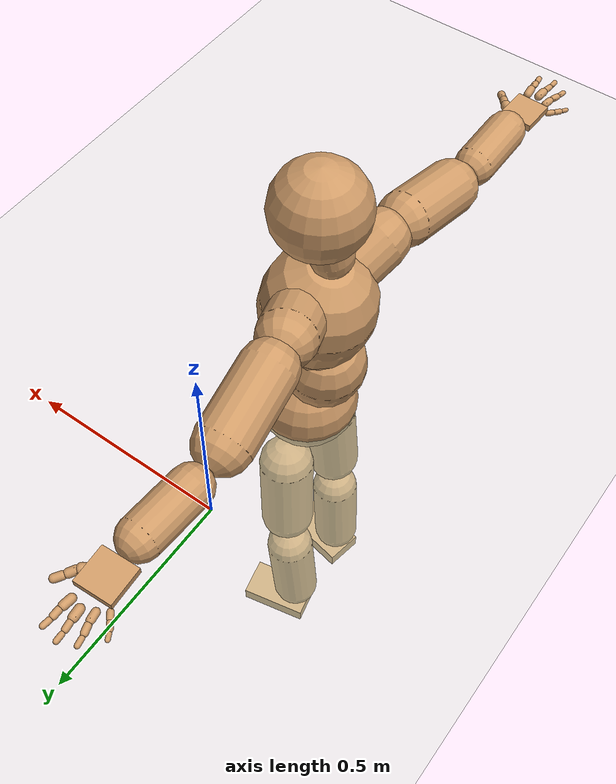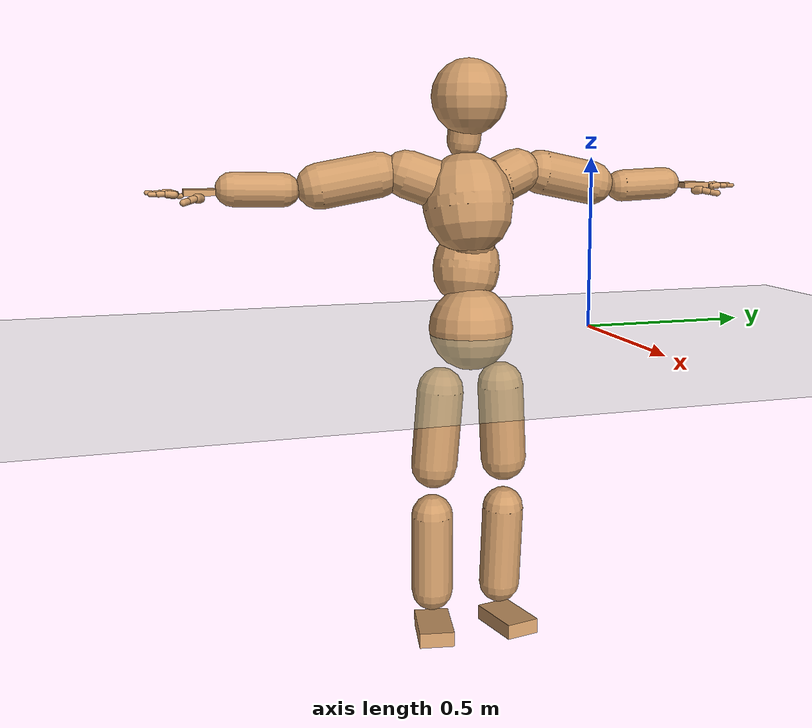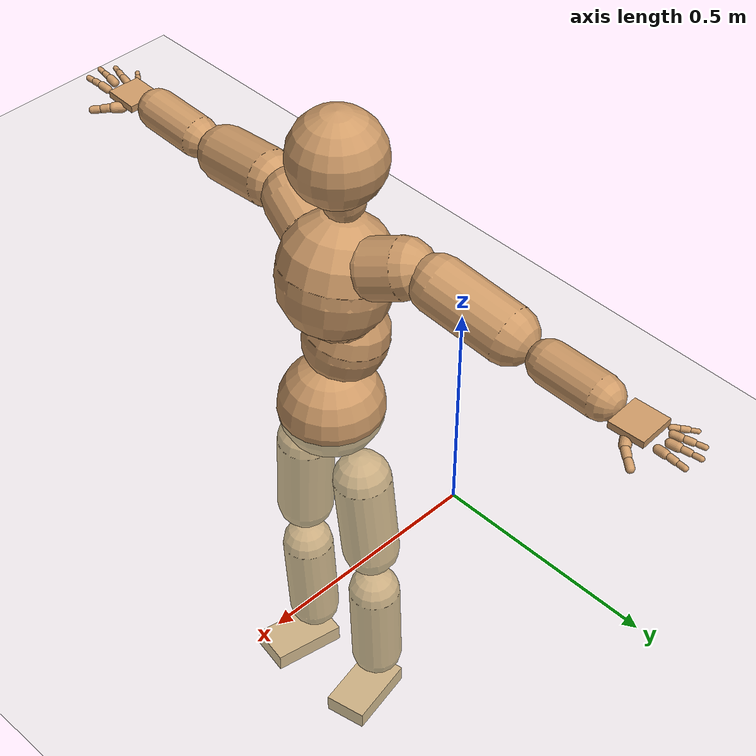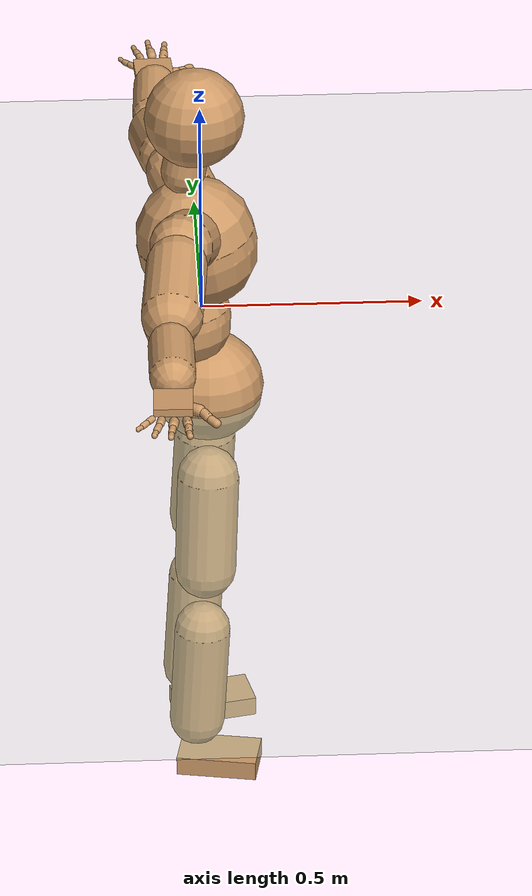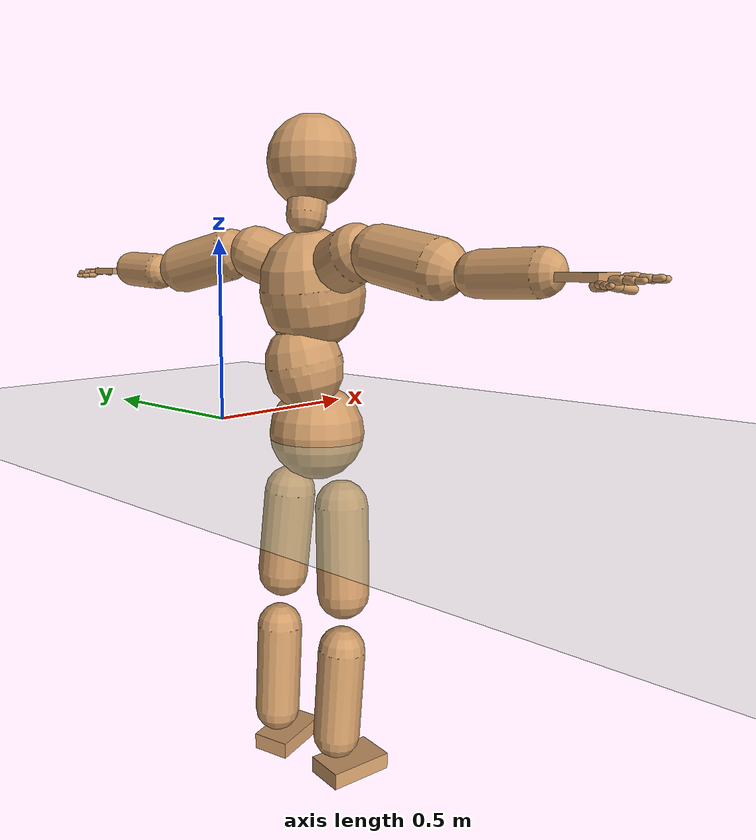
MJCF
<mujoco model="humanoid">
  <compiler coordinate="local" angle="radian"/>
  <default>
    <joint damping="0.0" armature="0.01" stiffness="0.0" limited="true"/>
    <geom conaffinity="1" condim="3" contype="7" margin="0.001" rgba="0.8 0.6 .4 1"/>
  </default>
  <asset>
    <texture type="skybox" builtin="gradient" rgb1=".4 .5 .6" rgb2="0 0 0" width="100" height="100"/>
    <texture builtin="flat" height="1278" mark="cross" markrgb="1 1 1" name="texgeom" random="0.01" rgb1="0.8 0.6 0.4" rgb2="0.8 0.6 0.4" type="cube" width="127"/>
    <texture builtin="checker" height="100" name="texplane" rgb1="0 0 0" rgb2="0.8 0.8 0.8" type="2d" width="100"/>
    <material name="MatPlane" reflectance="0.5" shininess="1" specular="1" texrepeat="60 60" texture="texplane"/>
    <material name="geom" texture="texgeom" texuniform="true"/>
  </asset>
  <worldbody>
    <light cutoff="100" diffuse="1 1 1" dir="-0 0 -1.3" directional="true" exponent="1" pos="0 0 1.3" specular=".1 .1 .1"/>
    <geom conaffinity="1" condim="3" name="floor" pos="0 0 0" rgba="0.8 0.9 0.8 1" size="100 100 .2" type="plane" material="MatPlane"/>
    <body name="Pelvis" pos="0.0008 -0.372 0.0146">
      <freejoint name="Pelvis"/>
      <geom type="sphere" contype="1" conaffinity="1" density="500" size="0.1225" pos="0.0000 0.0000 0.0000" name="Pelvis"/>
      <body name="L_Hip" pos="-0.0001 0.0876 -0.0977">
        <joint name="L_Hip_x" type="hinge" pos="0 0 0" axis="1 0 0" stiffness="800" damping="80" armature="0.02" range="-180.0000 180.0000"/>
        <joint name="L_Hip_y" type="hinge" pos="0 0 0" axis="0 1 0" stiffness="800" damping="80" armature="0.02" range="-180.0000 180.0000"/>
        <joint name="L_Hip_z" type="hinge" pos="0 0 0" axis="0 0 1" stiffness="800" damping="80" armature="0.02" range="-180.0000 180.0000"/>
        <geom type="capsule" contype="1" conaffinity="1" density="500" fromto="-0.0044 0.0049 -0.0767 -0.0176 0.0198 -0.3066" size="0.0678" name="L_Hip"/>
        <body name="L_Knee" pos="-0.022 0.0247 -0.3833">
          <joint name="L_Knee_x" type="hinge" pos="0 0 0" axis="1 0 0" stiffness="800" damping="80" armature="0.02" range="-180.0000 180.0000"/>
          <joint name="L_Knee_y" type="hinge" pos="0 0 0" axis="0 1 0" stiffness="800" damping="80" armature="0.02" range="-180.0000 180.0000"/>
          <joint name="L_Knee_z" type="hinge" pos="0 0 0" axis="0 0 1" stiffness="800" damping="80" armature="0.02" range="-180.0000 180.0000"/>
          <geom type="capsule" contype="1" conaffinity="1" density="500" fromto="-0.0053 -0.0019 -0.0818 -0.0212 -0.0075 -0.3272" size="0.0618" name="L_Knee"/>
          <body name="L_Ankle" pos="-0.0265 -0.0094 -0.409">
            <joint name="L_Ankle_x" type="hinge" pos="0 0 0" axis="1 0 0" stiffness="800" damping="80" armature="0.02" range="-180.0000 180.0000"/>
            <joint name="L_Ankle_y" type="hinge" pos="0 0 0" axis="0 1 0" stiffness="800" damping="80" armature="0.02" range="-180.0000 180.0000"/>
            <joint name="L_Ankle_z" type="hinge" pos="0 0 0" axis="0 0 1" stiffness="800" damping="80" armature="0.02" range="-180.0000 180.0000"/>
            <geom type="box" contype="1" conaffinity="1" density="500" pos="0.0560 0.0119 -0.0227" size="0.0899 0.0513 0.0222" quat="0.9945 0.0000 0.0000 0.1047" name="L_Ankle"/>
            <body name="L_Toe" pos="0.112 0.0238 -0.0455">
              <joint name="L_Toe_x" type="hinge" pos="0 0 0" axis="1 0 0" stiffness="500" damping="50" armature="0.02" range="-180.0000 180.0000"/>
              <joint name="L_Toe_y" type="hinge" pos="0 0 0" axis="0 1 0" stiffness="500" damping="50" armature="0.02" range="-180.0000 180.0000"/>
              <joint name="L_Toe_z" type="hinge" pos="0 0 0" axis="0 0 1" stiffness="500" damping="50" armature="0.02" range="-180.0000 180.0000"/>
              <geom type="box" contype="1" conaffinity="1" density="500" pos="0.0000 0.0000 0.0227" size="0.001 0.0025 0.0011" quat="0.9938 0.0000 0.0000 0.1112" name="L_Toe"/>
            </body>
          </body>
        </body>
      </body>
      <body name="R_Hip" pos="-0.0011 -0.0868 -0.1036">
        <joint name="R_Hip_x" type="hinge" pos="0 0 0" axis="1 0 0" stiffness="800" damping="80" armature="0.02" range="-180.0000 180.0000"/>
        <joint name="R_Hip_y" type="hinge" pos="0 0 0" axis="0 1 0" stiffness="800" damping="80" armature="0.02" range="-180.0000 180.0000"/>
        <joint name="R_Hip_z" type="hinge" pos="0 0 0" axis="0 0 1" stiffness="800" damping="80" armature="0.02" range="-180.0000 180.0000"/>
        <geom type="capsule" contype="1" conaffinity="1" density="500" fromto="-0.0031 -0.0059 -0.0760 -0.0122 -0.0235 -0.3040" size="0.0677" name="R_Hip"/>
        <body name="R_Knee" pos="-0.0153 -0.0294 -0.38">
          <joint name="R_Knee_x" type="hinge" pos="0 0 0" axis="1 0 0" stiffness="800" damping="80" armature="0.02" range="-180.0000 180.0000"/>
          <joint name="R_Knee_y" type="hinge" pos="0 0 0" axis="0 1 0" stiffness="800" damping="80" armature="0.02" range="-180.0000 180.0000"/>
          <joint name="R_Knee_z" type="hinge" pos="0 0 0" axis="0 0 1" stiffness="800" damping="80" armature="0.02" range="-180.0000 180.0000"/>
          <geom type="capsule" contype="1" conaffinity="1" density="500" fromto="-0.0047 0.0008 -0.0799 -0.0188 0.0030 -0.3198" size="0.0618" name="R_Knee"/>
          <body name="R_Ankle" pos="-0.0234 0.0038 -0.3997">
            <joint name="R_Ankle_x" type="hinge" pos="0 0 0" axis="1 0 0" stiffness="800" damping="80" armature="0.02" range="-180.0000 180.0000"/>
            <joint name="R_Ankle_y" type="hinge" pos="0 0 0" axis="0 1 0" stiffness="800" damping="80" armature="0.02" range="-180.0000 180.0000"/>
            <joint name="R_Ankle_z" type="hinge" pos="0 0 0" axis="0 0 1" stiffness="800" damping="80" armature="0.02" range="-180.0000 180.0000"/>
            <geom type="box" contype="1" conaffinity="1" density="500" pos="0.0530 -0.0096 -0.0243" size="0.0899 0.0513 0.0222" quat="0.9960 0.0000 0.0000 -0.0892" name="R_Ankle"/>
            <body name="R_Toe" pos="0.106 -0.0191 -0.0485">
              <joint name="R_Toe_x" type="hinge" pos="0 0 0" axis="1 0 0" stiffness="500" damping="50" armature="0.02" range="-180.0000 180.0000"/>
              <joint name="R_Toe_y" type="hinge" pos="0 0 0" axis="0 1 0" stiffness="500" damping="50" armature="0.02" range="-180.0000 180.0000"/>
              <joint name="R_Toe_z" type="hinge" pos="0 0 0" axis="0 0 1" stiffness="500" damping="50" armature="0.02" range="-180.0000 180.0000"/>
              <geom type="box" contype="1" conaffinity="1" density="500" pos="0.0000 0.0000 0.0243" size="0.001 0.0025 0.0011" quat="0.9969 0.0000 0.0000 -0.0786" name="R_Toe"/>
            </body>
          </body>
        </body>
      </body>
      <body name="Torso" pos="-0.0369 -0.0074 0.1161">
        <joint name="Torso_x" type="hinge" pos="0 0 0" axis="1 0 0" stiffness="1000" damping="100" armature="0.02" range="-180.0000 180.0000"/>
        <joint name="Torso_y" type="hinge" pos="0 0 0" axis="0 1 0" stiffness="1000" damping="100" armature="0.02" range="-180.0000 180.0000"/>
        <joint name="Torso_z" type="hinge" pos="0 0 0" axis="0 0 1" stiffness="1000" damping="100" armature="0.02" range="-180.0000 180.0000"/>
        <geom type="capsule" contype="1" conaffinity="1" density="500" fromto="-0.0104 0.0098 0.0682 -0.0069 0.0066 0.0455" size="0.0972" name="Torso"/>
        <body name="Spine" pos="-0.0173 0.0164 0.1137">
          <joint name="Spine_x" type="hinge" pos="0 0 0" axis="1 0 0" stiffness="1000" damping="100" armature="0.02" range="-180.0000 180.0000"/>
          <joint name="Spine_y" type="hinge" pos="0 0 0" axis="0 1 0" stiffness="1000" damping="100" armature="0.02" range="-180.0000 180.0000"/>
          <joint name="Spine_z" type="hinge" pos="0 0 0" axis="0 0 1" stiffness="1000" damping="100" armature="0.02" range="-180.0000 180.0000"/>
          <geom type="capsule" contype="1" conaffinity="1" density="500" fromto="0.0295 -0.0055 0.0290 0.0196 -0.0037 0.0194" size="0.0779" name="Spine"/>
          <body name="Chest" pos="0.0491 -0.0092 0.0484">
            <joint name="Chest_x" type="hinge" pos="0 0 0" axis="1 0 0" stiffness="1000" damping="100" armature="0.02" range="-180.0000 180.0000"/>
            <joint name="Chest_y" type="hinge" pos="0 0 0" axis="0 1 0" stiffness="1000" damping="100" armature="0.02" range="-180.0000 180.0000"/>
            <joint name="Chest_z" type="hinge" pos="0 0 0" axis="0 0 1" stiffness="1000" damping="100" armature="0.02" range="-180.0000 180.0000"/>
            <geom type="capsule" contype="1" conaffinity="1" density="500" fromto="-0.0194 -0.0023 0.0968 -0.0130 -0.0015 0.0645" size="0.1303" name="Chest"/>
            <body name="Neck" pos="-0.0499 -0.0075 0.2243">
              <joint name="Neck_x" type="hinge" pos="0 0 0" axis="1 0 0" stiffness="500" damping="50" armature="0.02" range="-180.0000 180.0000"/>
              <joint name="Neck_y" type="hinge" pos="0 0 0" axis="0 1 0" stiffness="500" damping="50" armature="0.02" range="-180.0000 180.0000"/>
              <joint name="Neck_z" type="hinge" pos="0 0 0" axis="0 0 1" stiffness="500" damping="50" armature="0.02" range="-180.0000 180.0000"/>
              <geom type="capsule" contype="1" conaffinity="1" density="500" fromto="0.0063 0.0020 0.0310 0.0252 0.0081 0.1242" size="0.0483" name="Neck"/>
              <body name="Head" pos="0.0315 0.0102 0.1552">
                <joint name="Head_x" type="hinge" pos="0 0 0" axis="1 0 0" stiffness="500" damping="50" armature="0.02" range="-180.0000 180.0000"/>
                <joint name="Head_y" type="hinge" pos="0 0 0" axis="0 1 0" stiffness="500" damping="50" armature="0.02" range="-180.0000 180.0000"/>
                <joint name="Head_z" type="hinge" pos="0 0 0" axis="0 0 1" stiffness="500" damping="50" armature="0.02" range="-180.0000 180.0000"/>
                <geom type="sphere" contype="1" conaffinity="1" density="500" size="0.1076" pos="0.0000 0.0000 0.0000" name="Head"/>
              </body>
            </body>
            <body name="L_Thorax" pos="-0.0189 0.0678 0.1324">
              <joint name="L_Thorax_x" type="hinge" pos="0 0 0" axis="1 0 0" stiffness="500" damping="50" armature="0.02" range="-180.0000 180.0000"/>
              <joint name="L_Thorax_y" type="hinge" pos="0 0 0" axis="0 1 0" stiffness="500" damping="50" armature="0.02" range="-180.0000 180.0000"/>
              <joint name="L_Thorax_z" type="hinge" pos="0 0 0" axis="0 0 1" stiffness="500" damping="50" armature="0.02" range="-180.0000 180.0000"/>
              <geom type="capsule" contype="1" conaffinity="1" density="500" fromto="-0.0086 0.0231 0.0089 -0.0346 0.0922 0.0358" size="0.0674" name="L_Thorax"/>
              <body name="L_Shoulder" pos="-0.0432 0.1153 0.0447">
                <joint name="L_Shoulder_x" type="hinge" pos="0 0 0" axis="1 0 0" stiffness="500" damping="50" armature="0.02" range="-180.0000 180.0000"/>
                <joint name="L_Shoulder_y" type="hinge" pos="0 0 0" axis="0 1 0" stiffness="500" damping="50" armature="0.02" range="-180.0000 180.0000"/>
                <joint name="L_Shoulder_z" type="hinge" pos="0 0 0" axis="0 0 1" stiffness="500" damping="50" armature="0.02" range="-180.0000 180.0000"/>
                <geom type="capsule" contype="1" conaffinity="1" density="500" fromto="-0.0067 0.0576 -0.0117 -0.0270 0.2303 -0.0468" size="0.0647" name="L_Shoulder"/>
                <body name="L_Elbow" pos="-0.0337 0.2879 -0.0586">
                  <joint name="L_Elbow_x" type="hinge" pos="0 0 0" axis="1 0 0" stiffness="500" damping="50" armature="0.02" range="-720.0000 720.0000"/>
                  <joint name="L_Elbow_y" type="hinge" pos="0 0 0" axis="0 1 0" stiffness="500" damping="50" armature="0.02" range="-720.0000 720.0000"/>
                  <joint name="L_Elbow_z" type="hinge" pos="0 0 0" axis="0 0 1" stiffness="500" damping="50" armature="0.02" range="-720.0000 720.0000"/>
                  <geom type="capsule" contype="1" conaffinity="1" density="500" fromto="0.0019 0.0461 0.0021 0.0078 0.1842 0.0085" size="0.0478" name="L_Elbow"/>
                  <body name="L_Wrist" pos="0.0097 0.2303 0.0107">
                    <joint name="L_Wrist_x" type="hinge" pos="0 0 0" axis="1 0 0" stiffness="300" damping="30" armature="0.02" range="-180.0000 180.0000"/>
                    <joint name="L_Wrist_y" type="hinge" pos="0 0 0" axis="0 1 0" stiffness="300" damping="30" armature="0.02" range="-180.0000 180.0000"/>
                    <joint name="L_Wrist_z" type="hinge" pos="0 0 0" axis="0 0 1" stiffness="300" damping="30" armature="0.02" range="-180.0000 180.0000"/>
                    <geom type="box" contype="1" conaffinity="1" density="500" pos="-0.0026 0.0443 -0.0084" size="0.042 0.0431 0.0082" quat="0.7272 0.0000 0.0000 -0.6864" name="L_Wrist"/>
                    <body name="L_Index1" pos="0.0215 0.1044 -0.014">
                      <joint name="L_Index1_x" type="hinge" pos="0 0 0" axis="1 0 0" stiffness="100" damping="10" armature="0.02" range="-180.0000 180.0000"/>
                      <joint name="L_Index1_y" type="hinge" pos="0 0 0" axis="0 1 0" stiffness="100" damping="10" armature="0.02" range="-180.0000 180.0000"/>
                      <joint name="L_Index1_z" type="hinge" pos="0 0 0" axis="0 0 1" stiffness="100" damping="10" armature="0.02" range="-180.0000 180.0000"/>
                      <geom type="capsule" contype="1" conaffinity="1" density="500" fromto="0.0005 0.0064 0.0007 0.0021 0.0255 0.0028" size="0.0096" name="L_Index1"/>
                      <body name="L_Index2" pos="0.0027 0.0319 0.0034">
                        <joint name="L_Index2_x" type="hinge" pos="0 0 0" axis="1 0 0" stiffness="100" damping="10" armature="0.02" range="-180.0000 180.0000"/>
                        <joint name="L_Index2_y" type="hinge" pos="0 0 0" axis="0 1 0" stiffness="100" damping="10" armature="0.02" range="-180.0000 180.0000"/>
                        <joint name="L_Index2_z" type="hinge" pos="0 0 0" axis="0 0 1" stiffness="100" damping="10" armature="0.02" range="-180.0000 180.0000"/>
                        <geom type="capsule" contype="1" conaffinity="1" density="500" fromto="0.0001 0.0045 -0.0003 0.0003 0.0179 -0.0010" size="0.0078" name="L_Index2"/>
                        <body name="L_Index3" pos="0.0003 0.0224 -0.0013">
                          <joint name="L_Index3_x" type="hinge" pos="0 0 0" axis="1 0 0" stiffness="100" damping="10" armature="0.02" range="-180.0000 180.0000"/>
                          <joint name="L_Index3_y" type="hinge" pos="0 0 0" axis="0 1 0" stiffness="100" damping="10" armature="0.02" range="-180.0000 180.0000"/>
                          <joint name="L_Index3_z" type="hinge" pos="0 0 0" axis="0 0 1" stiffness="100" damping="10" armature="0.02" range="-180.0000 180.0000"/>
                          <geom type="capsule" contype="1" conaffinity="1" density="500" fromto="0.0005 0.0049 0.0001 0.0019 0.0195 0.0006" size="0.0064" name="L_Index3"/>
                        </body>
                      </body>
                    </body>
                    <body name="L_Middle1" pos="-0.0032 0.1117 -0.0109">
                      <joint name="L_Middle1_x" type="hinge" pos="0 0 0" axis="1 0 0" stiffness="100" damping="10" armature="0.02" range="-180.0000 180.0000"/>
                      <joint name="L_Middle1_y" type="hinge" pos="0 0 0" axis="0 1 0" stiffness="100" damping="10" armature="0.02" range="-180.0000 180.0000"/>
                      <joint name="L_Middle1_z" type="hinge" pos="0 0 0" axis="0 0 1" stiffness="100" damping="10" armature="0.02" range="-180.0000 180.0000"/>
                      <geom type="capsule" contype="1" conaffinity="1" density="500" fromto="-0.0008 0.0061 0.0004 -0.0031 0.0243 0.0015" size="0.01" name="L_Middle1"/>
                      <body name="L_Middle2" pos="-0.0038 0.0303 0.0019">
                        <joint name="L_Middle2_x" type="hinge" pos="0 0 0" axis="1 0 0" stiffness="100" damping="10" armature="0.02" range="-180.0000 180.0000"/>
                        <joint name="L_Middle2_y" type="hinge" pos="0 0 0" axis="0 1 0" stiffness="100" damping="10" armature="0.02" range="-180.0000 180.0000"/>
                        <joint name="L_Middle2_z" type="hinge" pos="0 0 0" axis="0 0 1" stiffness="100" damping="10" armature="0.02" range="-180.0000 180.0000"/>
                        <geom type="capsule" contype="1" conaffinity="1" density="500" fromto="-0.0008 0.0047 -0.0001 -0.0031 0.0187 -0.0006" size="0.0072" name="L_Middle2"/>
                        <body name="L_Middle3" pos="-0.0038 0.0233 -0.0007">
                          <joint name="L_Middle3_x" type="hinge" pos="0 0 0" axis="1 0 0" stiffness="100" damping="10" armature="0.02" range="-180.0000 180.0000"/>
                          <joint name="L_Middle3_y" type="hinge" pos="0 0 0" axis="0 1 0" stiffness="100" damping="10" armature="0.02" range="-180.0000 180.0000"/>
                          <joint name="L_Middle3_z" type="hinge" pos="0 0 0" axis="0 0 1" stiffness="100" damping="10" armature="0.02" range="-180.0000 180.0000"/>
                          <geom type="capsule" contype="1" conaffinity="1" density="500" fromto="-0.0004 0.0051 0.0003 -0.0015 0.0203 0.0010" size="0.006" name="L_Middle3"/>
                        </body>
                      </body>
                    </body>
                    <body name="L_Pinky1" pos="-0.0448 0.0854 -0.0204">
                      <joint name="L_Pinky1_x" type="hinge" pos="0 0 0" axis="1 0 0" stiffness="100" damping="10" armature="0.02" range="-180.0000 180.0000"/>
                      <joint name="L_Pinky1_y" type="hinge" pos="0 0 0" axis="0 1 0" stiffness="100" damping="10" armature="0.02" range="-180.0000 180.0000"/>
                      <joint name="L_Pinky1_z" type="hinge" pos="0 0 0" axis="0 0 1" stiffness="100" damping="10" armature="0.02" range="-180.0000 180.0000"/>
                      <geom type="capsule" contype="1" conaffinity="1" density="500" fromto="-0.0025 0.0030 -0.0001 -0.0099 0.0120 -0.0006" size="0.007" name="L_Pinky1"/>
                      <body name="L_Pinky2" pos="-0.0124 0.015 -0.0007">
                        <joint name="L_Pinky2_x" type="hinge" pos="0 0 0" axis="1 0 0" stiffness="100" damping="10" armature="0.02" range="-180.0000 180.0000"/>
                        <joint name="L_Pinky2_y" type="hinge" pos="0 0 0" axis="0 1 0" stiffness="100" damping="10" armature="0.02" range="-180.0000 180.0000"/>
                        <joint name="L_Pinky2_z" type="hinge" pos="0 0 0" axis="0 0 1" stiffness="100" damping="10" armature="0.02" range="-180.0000 180.0000"/>
                        <geom type="capsule" contype="1" conaffinity="1" density="500" fromto="-0.0023 0.0030 -0.0003 -0.0094 0.0121 -0.0010" size="0.0067" name="L_Pinky2"/>
                        <body name="L_Pinky3" pos="-0.0117 0.0151 -0.0013">
                          <joint name="L_Pinky3_x" type="hinge" pos="0 0 0" axis="1 0 0" stiffness="100" damping="10" armature="0.02" range="-180.0000 180.0000"/>
                          <joint name="L_Pinky3_y" type="hinge" pos="0 0 0" axis="0 1 0" stiffness="100" damping="10" armature="0.02" range="-180.0000 180.0000"/>
                          <joint name="L_Pinky3_z" type="hinge" pos="0 0 0" axis="0 0 1" stiffness="100" damping="10" armature="0.02" range="-180.0000 180.0000"/>
                          <geom type="capsule" contype="1" conaffinity="1" density="500" fromto="-0.0019 0.0034 0.0001 -0.0078 0.0137 0.0006" size="0.005" name="L_Pinky3"/>
                        </body>
                      </body>
                    </body>
                    <body name="L_Ring1" pos="-0.0281 0.0993 -0.0143">
                      <joint name="L_Ring1_x" type="hinge" pos="0 0 0" axis="1 0 0" stiffness="100" damping="10" armature="0.02" range="-180.0000 180.0000"/>
                      <joint name="L_Ring1_y" type="hinge" pos="0 0 0" axis="0 1 0" stiffness="100" damping="10" armature="0.02" range="-180.0000 180.0000"/>
                      <joint name="L_Ring1_z" type="hinge" pos="0 0 0" axis="0 0 1" stiffness="100" damping="10" armature="0.02" range="-180.0000 180.0000"/>
                      <geom type="capsule" contype="1" conaffinity="1" density="500" fromto="-0.0011 0.0056 0.0004 -0.0044 0.0224 0.0015" size="0.0086" name="L_Ring1"/>
                      <body name="L_Ring2" pos="-0.0055 0.0281 0.0019">
                        <joint name="L_Ring2_x" type="hinge" pos="0 0 0" axis="1 0 0" stiffness="100" damping="10" armature="0.02" range="-180.0000 180.0000"/>
                        <joint name="L_Ring2_y" type="hinge" pos="0 0 0" axis="0 1 0" stiffness="100" damping="10" armature="0.02" range="-180.0000 180.0000"/>
                        <joint name="L_Ring2_z" type="hinge" pos="0 0 0" axis="0 0 1" stiffness="100" damping="10" armature="0.02" range="-180.0000 180.0000"/>
                        <geom type="capsule" contype="1" conaffinity="1" density="500" fromto="-0.0015 0.0045 -0.0003 -0.0058 0.0180 -0.0011" size="0.0076" name="L_Ring2"/>
                        <body name="L_Ring3" pos="-0.0073 0.0225 -0.0013">
                          <joint name="L_Ring3_x" type="hinge" pos="0 0 0" axis="1 0 0" stiffness="100" damping="10" armature="0.02" range="-180.0000 180.0000"/>
                          <joint name="L_Ring3_y" type="hinge" pos="0 0 0" axis="0 1 0" stiffness="100" damping="10" armature="0.02" range="-180.0000 180.0000"/>
                          <joint name="L_Ring3_z" type="hinge" pos="0 0 0" axis="0 0 1" stiffness="100" damping="10" armature="0.02" range="-180.0000 180.0000"/>
                          <geom type="capsule" contype="1" conaffinity="1" density="500" fromto="-0.0011 0.0049 0.0001 -0.0042 0.0196 0.0005" size="0.0058" name="L_Ring3"/>
                        </body>
                      </body>
                    </body>
                    <body name="L_Thumb1" pos="0.0291 0.0422 -0.0242">
                      <joint name="L_Thumb1_x" type="hinge" pos="0 0 0" axis="1 0 0" stiffness="100" damping="10" armature="0.02" range="-180.0000 180.0000"/>
                      <joint name="L_Thumb1_y" type="hinge" pos="0 0 0" axis="0 1 0" stiffness="100" damping="10" armature="0.02" range="-180.0000 180.0000"/>
                      <joint name="L_Thumb1_z" type="hinge" pos="0 0 0" axis="0 0 1" stiffness="100" damping="10" armature="0.02" range="-180.0000 180.0000"/>
                      <geom type="capsule" contype="1" conaffinity="1" density="500" fromto="0.0050 0.0034 0.0003 0.0200 0.0134 0.0013" size="0.0127" name="L_Thumb1"/>
                      <body name="L_Thumb2" pos="0.025 0.0168 0.0016">
                        <joint name="L_Thumb2_x" type="hinge" pos="0 0 0" axis="1 0 0" stiffness="100" damping="10" armature="0.02" range="-180.0000 180.0000"/>
                        <joint name="L_Thumb2_y" type="hinge" pos="0 0 0" axis="0 1 0" stiffness="100" damping="10" armature="0.02" range="-180.0000 180.0000"/>
                        <joint name="L_Thumb2_z" type="hinge" pos="0 0 0" axis="0 0 1" stiffness="100" damping="10" armature="0.02" range="-180.0000 180.0000"/>
                        <geom type="capsule" contype="1" conaffinity="1" density="500" fromto="0.0029 0.0040 -0.0012 0.0118 0.0161 -0.0049" size="0.0098" name="L_Thumb2"/>
                        <body name="L_Thumb3" pos="0.0147 0.0201 -0.0061">
                          <joint name="L_Thumb3_x" type="hinge" pos="0 0 0" axis="1 0 0" stiffness="100" damping="10" armature="0.02" range="-180.0000 180.0000"/>
                          <joint name="L_Thumb3_y" type="hinge" pos="0 0 0" axis="0 1 0" stiffness="100" damping="10" armature="0.02" range="-180.0000 180.0000"/>
                          <joint name="L_Thumb3_z" type="hinge" pos="0 0 0" axis="0 0 1" stiffness="100" damping="10" armature="0.02" range="-180.0000 180.0000"/>
                          <geom type="capsule" contype="1" conaffinity="1" density="500" fromto="0.0033 0.0044 -0.0008 0.0134 0.0177 -0.0033" size="0.0091" name="L_Thumb3"/>
                        </body>
                      </body>
                    </body>
                  </body>
                </body>
              </body>
            </body>
            <body name="R_Thorax" pos="-0.0283 -0.0717 0.1272">
              <joint name="R_Thorax_x" type="hinge" pos="0 0 0" axis="1 0 0" stiffness="500" damping="50" armature="0.02" range="-180.0000 180.0000"/>
              <joint name="R_Thorax_y" type="hinge" pos="0 0 0" axis="0 1 0" stiffness="500" damping="50" armature="0.02" range="-180.0000 180.0000"/>
              <joint name="R_Thorax_z" type="hinge" pos="0 0 0" axis="0 0 1" stiffness="500" damping="50" armature="0.02" range="-180.0000 180.0000"/>
              <geom type="capsule" contype="1" conaffinity="1" density="500" fromto="-0.0065 -0.0252 0.0092 -0.0262 -0.1007 0.0369" size="0.0687" name="R_Thorax"/>
              <body name="R_Shoulder" pos="-0.0327 -0.1259 0.0461">
                <joint name="R_Shoulder_x" type="hinge" pos="0 0 0" axis="1 0 0" stiffness="500" damping="50" armature="0.02" range="-180.0000 180.0000"/>
                <joint name="R_Shoulder_y" type="hinge" pos="0 0 0" axis="0 1 0" stiffness="500" damping="50" armature="0.02" range="-180.0000 180.0000"/>
                <joint name="R_Shoulder_z" type="hinge" pos="0 0 0" axis="0 0 1" stiffness="500" damping="50" armature="0.02" range="-180.0000 180.0000"/>
                <geom type="capsule" contype="1" conaffinity="1" density="500" fromto="-0.0052 -0.0552 -0.0103 -0.0208 -0.2207 -0.0411" size="0.0652" name="R_Shoulder"/>
                <body name="R_Elbow" pos="-0.026 -0.2759 -0.0513">
                  <joint name="R_Elbow_x" type="hinge" pos="0 0 0" axis="1 0 0" stiffness="500" damping="50" armature="0.02" range="-720.0000 720.0000"/>
                  <joint name="R_Elbow_y" type="hinge" pos="0 0 0" axis="0 1 0" stiffness="500" damping="50" armature="0.02" range="-720.0000 720.0000"/>
                  <joint name="R_Elbow_z" type="hinge" pos="0 0 0" axis="0 0 1" stiffness="500" damping="50" armature="0.02" range="-720.0000 720.0000"/>
                  <geom type="capsule" contype="1" conaffinity="1" density="500" fromto="-0.0002 -0.0460 0.0012 -0.0009 -0.1841 0.0049" size="0.0479" name="R_Elbow"/>
                  <body name="R_Wrist" pos="-0.0011 -0.2302 0.0062">
                    <joint name="R_Wrist_x" type="hinge" pos="0 0 0" axis="1 0 0" stiffness="300" damping="30" armature="0.02" range="-180.0000 180.0000"/>
                    <joint name="R_Wrist_y" type="hinge" pos="0 0 0" axis="0 1 0" stiffness="300" damping="30" armature="0.02" range="-180.0000 180.0000"/>
                    <joint name="R_Wrist_z" type="hinge" pos="0 0 0" axis="0 0 1" stiffness="300" damping="30" armature="0.02" range="-180.0000 180.0000"/>
                    <geom type="box" contype="1" conaffinity="1" density="500" pos="-0.0015 -0.0437 -0.0078" size="0.042 0.0403 0.0085" quat="0.7192 0.0000 0.0000 0.6948" name="R_Wrist"/>
                    <body name="R_Index1" pos="0.0236 -0.1032 -0.0129">
                      <joint name="R_Index1_x" type="hinge" pos="0 0 0" axis="1 0 0" stiffness="100" damping="10" armature="0.02" range="-180.0000 180.0000"/>
                      <joint name="R_Index1_y" type="hinge" pos="0 0 0" axis="0 1 0" stiffness="100" damping="10" armature="0.02" range="-180.0000 180.0000"/>
                      <joint name="R_Index1_z" type="hinge" pos="0 0 0" axis="0 0 1" stiffness="100" damping="10" armature="0.02" range="-180.0000 180.0000"/>
                      <geom type="capsule" contype="1" conaffinity="1" density="500" fromto="0.0005 -0.0064 0.0007 0.0021 -0.0255 0.0028" size="0.0096" name="R_Index1"/>
                      <body name="R_Index2" pos="0.0027 -0.0319 0.0034">
                        <joint name="R_Index2_x" type="hinge" pos="0 0 0" axis="1 0 0" stiffness="100" damping="10" armature="0.02" range="-180.0000 180.0000"/>
                        <joint name="R_Index2_y" type="hinge" pos="0 0 0" axis="0 1 0" stiffness="100" damping="10" armature="0.02" range="-180.0000 180.0000"/>
                        <joint name="R_Index2_z" type="hinge" pos="0 0 0" axis="0 0 1" stiffness="100" damping="10" armature="0.02" range="-180.0000 180.0000"/>
                        <geom type="capsule" contype="1" conaffinity="1" density="500" fromto="0.0001 -0.0045 -0.0003 0.0003 -0.0179 -0.0010" size="0.0078" name="R_Index2"/>
                        <body name="R_Index3" pos="0.0003 -0.0224 -0.0013">
                          <joint name="R_Index3_x" type="hinge" pos="0 0 0" axis="1 0 0" stiffness="100" damping="10" armature="0.02" range="-180.0000 180.0000"/>
                          <joint name="R_Index3_y" type="hinge" pos="0 0 0" axis="0 1 0" stiffness="100" damping="10" armature="0.02" range="-180.0000 180.0000"/>
                          <joint name="R_Index3_z" type="hinge" pos="0 0 0" axis="0 0 1" stiffness="100" damping="10" armature="0.02" range="-180.0000 180.0000"/>
                          <geom type="capsule" contype="1" conaffinity="1" density="500" fromto="0.0005 -0.0041 0.0001 0.0019 -0.0163 0.0006" size="0.0067" name="R_Index3"/>
                        </body>
                      </body>
                    </body>
                    <body name="R_Middle1" pos="-0.0011 -0.1104 -0.0098">
                      <joint name="R_Middle1_x" type="hinge" pos="0 0 0" axis="1 0 0" stiffness="100" damping="10" armature="0.02" range="-180.0000 180.0000"/>
                      <joint name="R_Middle1_y" type="hinge" pos="0 0 0" axis="0 1 0" stiffness="100" damping="10" armature="0.02" range="-180.0000 180.0000"/>
                      <joint name="R_Middle1_z" type="hinge" pos="0 0 0" axis="0 0 1" stiffness="100" damping="10" armature="0.02" range="-180.0000 180.0000"/>
                      <geom type="capsule" contype="1" conaffinity="1" density="500" fromto="-0.0008 -0.0061 0.0004 -0.0031 -0.0243 0.0015" size="0.01" name="R_Middle1"/>
                      <body name="R_Middle2" pos="-0.0038 -0.0303 0.0019">
                        <joint name="R_Middle2_x" type="hinge" pos="0 0 0" axis="1 0 0" stiffness="100" damping="10" armature="0.02" range="-180.0000 180.0000"/>
                        <joint name="R_Middle2_y" type="hinge" pos="0 0 0" axis="0 1 0" stiffness="100" damping="10" armature="0.02" range="-180.0000 180.0000"/>
                        <joint name="R_Middle2_z" type="hinge" pos="0 0 0" axis="0 0 1" stiffness="100" damping="10" armature="0.02" range="-180.0000 180.0000"/>
                        <geom type="capsule" contype="1" conaffinity="1" density="500" fromto="-0.0008 -0.0047 -0.0001 -0.0031 -0.0187 -0.0006" size="0.0072" name="R_Middle2"/>
                        <body name="R_Middle3" pos="-0.0038 -0.0233 -0.0007">
                          <joint name="R_Middle3_x" type="hinge" pos="0 0 0" axis="1 0 0" stiffness="100" damping="10" armature="0.02" range="-180.0000 180.0000"/>
                          <joint name="R_Middle3_y" type="hinge" pos="0 0 0" axis="0 1 0" stiffness="100" damping="10" armature="0.02" range="-180.0000 180.0000"/>
                          <joint name="R_Middle3_z" type="hinge" pos="0 0 0" axis="0 0 1" stiffness="100" damping="10" armature="0.02" range="-180.0000 180.0000"/>
                          <geom type="capsule" contype="1" conaffinity="1" density="500" fromto="-0.0004 -0.0043 0.0003 -0.0015 -0.0171 0.0010" size="0.0062" name="R_Middle3"/>
                        </body>
                      </body>
                    </body>
                    <body name="R_Pinky1" pos="-0.0427 -0.0842 -0.0193">
                      <joint name="R_Pinky1_x" type="hinge" pos="0 0 0" axis="1 0 0" stiffness="100" damping="10" armature="0.02" range="-180.0000 180.0000"/>
                      <joint name="R_Pinky1_y" type="hinge" pos="0 0 0" axis="0 1 0" stiffness="100" damping="10" armature="0.02" range="-180.0000 180.0000"/>
                      <joint name="R_Pinky1_z" type="hinge" pos="0 0 0" axis="0 0 1" stiffness="100" damping="10" armature="0.02" range="-180.0000 180.0000"/>
                      <geom type="capsule" contype="1" conaffinity="1" density="500" fromto="-0.0025 -0.0030 -0.0001 -0.0099 -0.0120 -0.0006" size="0.007" name="R_Pinky1"/>
                      <body name="R_Pinky2" pos="-0.0124 -0.015 -0.0007">
                        <joint name="R_Pinky2_x" type="hinge" pos="0 0 0" axis="1 0 0" stiffness="100" damping="10" armature="0.02" range="-180.0000 180.0000"/>
                        <joint name="R_Pinky2_y" type="hinge" pos="0 0 0" axis="0 1 0" stiffness="100" damping="10" armature="0.02" range="-180.0000 180.0000"/>
                        <joint name="R_Pinky2_z" type="hinge" pos="0 0 0" axis="0 0 1" stiffness="100" damping="10" armature="0.02" range="-180.0000 180.0000"/>
                        <geom type="capsule" contype="1" conaffinity="1" density="500" fromto="-0.0023 -0.0030 -0.0003 -0.0094 -0.0121 -0.0010" size="0.0067" name="R_Pinky2"/>
                        <body name="R_Pinky3" pos="-0.0117 -0.0151 -0.0013">
                          <joint name="R_Pinky3_x" type="hinge" pos="0 0 0" axis="1 0 0" stiffness="100" damping="10" armature="0.02" range="-180.0000 180.0000"/>
                          <joint name="R_Pinky3_y" type="hinge" pos="0 0 0" axis="0 1 0" stiffness="100" damping="10" armature="0.02" range="-180.0000 180.0000"/>
                          <joint name="R_Pinky3_z" type="hinge" pos="0 0 0" axis="0 0 1" stiffness="100" damping="10" armature="0.02" range="-180.0000 180.0000"/>
                          <geom type="capsule" contype="1" conaffinity="1" density="500" fromto="-0.0019 -0.0026 0.0001 -0.0078 -0.0105 0.0006" size="0.0052" name="R_Pinky3"/>
                        </body>
                      </body>
                    </body>
                    <body name="R_Ring1" pos="-0.026 -0.0981 -0.0132">
                      <joint name="R_Ring1_x" type="hinge" pos="0 0 0" axis="1 0 0" stiffness="100" damping="10" armature="0.02" range="-180.0000 180.0000"/>
                      <joint name="R_Ring1_y" type="hinge" pos="0 0 0" axis="0 1 0" stiffness="100" damping="10" armature="0.02" range="-180.0000 180.0000"/>
                      <joint name="R_Ring1_z" type="hinge" pos="0 0 0" axis="0 0 1" stiffness="100" damping="10" armature="0.02" range="-180.0000 180.0000"/>
                      <geom type="capsule" contype="1" conaffinity="1" density="500" fromto="-0.0011 -0.0056 0.0004 -0.0044 -0.0224 0.0015" size="0.0086" name="R_Ring1"/>
                      <body name="R_Ring2" pos="-0.0055 -0.0281 0.0019">
                        <joint name="R_Ring2_x" type="hinge" pos="0 0 0" axis="1 0 0" stiffness="100" damping="10" armature="0.02" range="-180.0000 180.0000"/>
                        <joint name="R_Ring2_y" type="hinge" pos="0 0 0" axis="0 1 0" stiffness="100" damping="10" armature="0.02" range="-180.0000 180.0000"/>
                        <joint name="R_Ring2_z" type="hinge" pos="0 0 0" axis="0 0 1" stiffness="100" damping="10" armature="0.02" range="-180.0000 180.0000"/>
                        <geom type="capsule" contype="1" conaffinity="1" density="500" fromto="-0.0015 -0.0045 -0.0003 -0.0058 -0.0180 -0.0011" size="0.0076" name="R_Ring2"/>
                        <body name="R_Ring3" pos="-0.0073 -0.0225 -0.0013">
                          <joint name="R_Ring3_x" type="hinge" pos="0 0 0" axis="1 0 0" stiffness="100" damping="10" armature="0.02" range="-180.0000 180.0000"/>
                          <joint name="R_Ring3_y" type="hinge" pos="0 0 0" axis="0 1 0" stiffness="100" damping="10" armature="0.02" range="-180.0000 180.0000"/>
                          <joint name="R_Ring3_z" type="hinge" pos="0 0 0" axis="0 0 1" stiffness="100" damping="10" armature="0.02" range="-180.0000 180.0000"/>
                          <geom type="capsule" contype="1" conaffinity="1" density="500" fromto="-0.0011 -0.0041 0.0001 -0.0042 -0.0164 0.0005" size="0.006" name="R_Ring3"/>
                        </body>
                      </body>
                    </body>
                    <body name="R_Thumb1" pos="0.0312 -0.0409 -0.0231">
                      <joint name="R_Thumb1_x" type="hinge" pos="0 0 0" axis="1 0 0" stiffness="100" damping="10" armature="0.02" range="-180.0000 180.0000"/>
                      <joint name="R_Thumb1_y" type="hinge" pos="0 0 0" axis="0 1 0" stiffness="100" damping="10" armature="0.02" range="-180.0000 180.0000"/>
                      <joint name="R_Thumb1_z" type="hinge" pos="0 0 0" axis="0 0 1" stiffness="100" damping="10" armature="0.02" range="-180.0000 180.0000"/>
                      <geom type="capsule" contype="1" conaffinity="1" density="500" fromto="0.0050 -0.0034 0.0003 0.0200 -0.0134 0.0013" size="0.0127" name="R_Thumb1"/>
                      <body name="R_Thumb2" pos="0.025 -0.0168 0.0016">
                        <joint name="R_Thumb2_x" type="hinge" pos="0 0 0" axis="1 0 0" stiffness="100" damping="10" armature="0.02" range="-180.0000 180.0000"/>
                        <joint name="R_Thumb2_y" type="hinge" pos="0 0 0" axis="0 1 0" stiffness="100" damping="10" armature="0.02" range="-180.0000 180.0000"/>
                        <joint name="R_Thumb2_z" type="hinge" pos="0 0 0" axis="0 0 1" stiffness="100" damping="10" armature="0.02" range="-180.0000 180.0000"/>
                        <geom type="capsule" contype="1" conaffinity="1" density="500" fromto="0.0029 -0.0040 -0.0012 0.0118 -0.0161 -0.0049" size="0.0098" name="R_Thumb2"/>
                        <body name="R_Thumb3" pos="0.0147 -0.0201 -0.0061">
                          <joint name="R_Thumb3_x" type="hinge" pos="0 0 0" axis="1 0 0" stiffness="100" damping="10" armature="0.02" range="-180.0000 180.0000"/>
                          <joint name="R_Thumb3_y" type="hinge" pos="0 0 0" axis="0 1 0" stiffness="100" damping="10" armature="0.02" range="-180.0000 180.0000"/>
                          <joint name="R_Thumb3_z" type="hinge" pos="0 0 0" axis="0 0 1" stiffness="100" damping="10" armature="0.02" range="-180.0000 180.0000"/>
                          <geom type="capsule" contype="1" conaffinity="1" density="500" fromto="0.0033 -0.0036 -0.0008 0.0134 -0.0145 -0.0033" size="0.0093" name="R_Thumb3"/>
                        </body>
                      </body>
                    </body>
                  </body>
                </body>
              </body>
            </body>
          </body>
        </body>
      </body>
    </body>
  </worldbody>
  <actuator>
    <motor name="L_Hip_x" joint="L_Hip_x" gear="500"/>
    <motor name="L_Hip_y" joint="L_Hip_y" gear="500"/>
    <motor name="L_Hip_z" joint="L_Hip_z" gear="500"/>
    <motor name="L_Knee_x" joint="L_Knee_x" gear="500"/>
    <motor name="L_Knee_y" joint="L_Knee_y" gear="500"/>
    <motor name="L_Knee_z" joint="L_Knee_z" gear="500"/>
    <motor name="L_Ankle_x" joint="L_Ankle_x" gear="500"/>
    <motor name="L_Ankle_y" joint="L_Ankle_y" gear="500"/>
    <motor name="L_Ankle_z" joint="L_Ankle_z" gear="500"/>
    <motor name="L_Toe_x" joint="L_Toe_x" gear="500"/>
    <motor name="L_Toe_y" joint="L_Toe_y" gear="500"/>
    <motor name="L_Toe_z" joint="L_Toe_z" gear="500"/>
    <motor name="R_Hip_x" joint="R_Hip_x" gear="500"/>
    <motor name="R_Hip_y" joint="R_Hip_y" gear="500"/>
    <motor name="R_Hip_z" joint="R_Hip_z" gear="500"/>
    <motor name="R_Knee_x" joint="R_Knee_x" gear="500"/>
    <motor name="R_Knee_y" joint="R_Knee_y" gear="500"/>
    <motor name="R_Knee_z" joint="R_Knee_z" gear="500"/>
    <motor name="R_Ankle_x" joint="R_Ankle_x" gear="500"/>
    <motor name="R_Ankle_y" joint="R_Ankle_y" gear="500"/>
    <motor name="R_Ankle_z" joint="R_Ankle_z" gear="500"/>
    <motor name="R_Toe_x" joint="R_Toe_x" gear="500"/>
    <motor name="R_Toe_y" joint="R_Toe_y" gear="500"/>
    <motor name="R_Toe_z" joint="R_Toe_z" gear="500"/>
    <motor name="Torso_x" joint="Torso_x" gear="500"/>
    <motor name="Torso_y" joint="Torso_y" gear="500"/>
    <motor name="Torso_z" joint="Torso_z" gear="500"/>
    <motor name="Spine_x" joint="Spine_x" gear="500"/>
    <motor name="Spine_y" joint="Spine_y" gear="500"/>
    <motor name="Spine_z" joint="Spine_z" gear="500"/>
    <motor name="Chest_x" joint="Chest_x" gear="500"/>
    <motor name="Chest_y" joint="Chest_y" gear="500"/>
    <motor name="Chest_z" joint="Chest_z" gear="500"/>
    <motor name="Neck_x" joint="Neck_x" gear="500"/>
    <motor name="Neck_y" joint="Neck_y" gear="500"/>
    <motor name="Neck_z" joint="Neck_z" gear="500"/>
    <motor name="Head_x" joint="Head_x" gear="500"/>
    <motor name="Head_y" joint="Head_y" gear="500"/>
    <motor name="Head_z" joint="Head_z" gear="500"/>
    <motor name="L_Thorax_x" joint="L_Thorax_x" gear="500"/>
    <motor name="L_Thorax_y" joint="L_Thorax_y" gear="500"/>
    <motor name="L_Thorax_z" joint="L_Thorax_z" gear="500"/>
    <motor name="L_Shoulder_x" joint="L_Shoulder_x" gear="500"/>
    <motor name="L_Shoulder_y" joint="L_Shoulder_y" gear="500"/>
    <motor name="L_Shoulder_z" joint="L_Shoulder_z" gear="500"/>
    <motor name="L_Elbow_x" joint="L_Elbow_x" gear="500"/>
    <motor name="L_Elbow_y" joint="L_Elbow_y" gear="500"/>
    <motor name="L_Elbow_z" joint="L_Elbow_z" gear="500"/>
    <motor name="L_Wrist_x" joint="L_Wrist_x" gear="500"/>
    <motor name="L_Wrist_y" joint="L_Wrist_y" gear="500"/>
    <motor name="L_Wrist_z" joint="L_Wrist_z" gear="500"/>
    <motor name="L_Index1_x" joint="L_Index1_x" gear="500"/>
    <motor name="L_Index1_y" joint="L_Index1_y" gear="500"/>
    <motor name="L_Index1_z" joint="L_Index1_z" gear="500"/>
    <motor name="L_Index2_x" joint="L_Index2_x" gear="500"/>
    <motor name="L_Index2_y" joint="L_Index2_y" gear="500"/>
    <motor name="L_Index2_z" joint="L_Index2_z" gear="500"/>
    <motor name="L_Index3_x" joint="L_Index3_x" gear="500"/>
    <motor name="L_Index3_y" joint="L_Index3_y" gear="500"/>
    <motor name="L_Index3_z" joint="L_Index3_z" gear="500"/>
    <motor name="L_Middle1_x" joint="L_Middle1_x" gear="500"/>
    <motor name="L_Middle1_y" joint="L_Middle1_y" gear="500"/>
    <motor name="L_Middle1_z" joint="L_Middle1_z" gear="500"/>
    <motor name="L_Middle2_x" joint="L_Middle2_x" gear="500"/>
    <motor name="L_Middle2_y" joint="L_Middle2_y" gear="500"/>
    <motor name="L_Middle2_z" joint="L_Middle2_z" gear="500"/>
    <motor name="L_Middle3_x" joint="L_Middle3_x" gear="500"/>
    <motor name="L_Middle3_y" joint="L_Middle3_y" gear="500"/>
    <motor name="L_Middle3_z" joint="L_Middle3_z" gear="500"/>
    <motor name="L_Pinky1_x" joint="L_Pinky1_x" gear="500"/>
    <motor name="L_Pinky1_y" joint="L_Pinky1_y" gear="500"/>
    <motor name="L_Pinky1_z" joint="L_Pinky1_z" gear="500"/>
    <motor name="L_Pinky2_x" joint="L_Pinky2_x" gear="500"/>
    <motor name="L_Pinky2_y" joint="L_Pinky2_y" gear="500"/>
    <motor name="L_Pinky2_z" joint="L_Pinky2_z" gear="500"/>
    <motor name="L_Pinky3_x" joint="L_Pinky3_x" gear="500"/>
    <motor name="L_Pinky3_y" joint="L_Pinky3_y" gear="500"/>
    <motor name="L_Pinky3_z" joint="L_Pinky3_z" gear="500"/>
    <motor name="L_Ring1_x" joint="L_Ring1_x" gear="500"/>
    <motor name="L_Ring1_y" joint="L_Ring1_y" gear="500"/>
    <motor name="L_Ring1_z" joint="L_Ring1_z" gear="500"/>
    <motor name="L_Ring2_x" joint="L_Ring2_x" gear="500"/>
    <motor name="L_Ring2_y" joint="L_Ring2_y" gear="500"/>
    <motor name="L_Ring2_z" joint="L_Ring2_z" gear="500"/>
    <motor name="L_Ring3_x" joint="L_Ring3_x" gear="500"/>
    <motor name="L_Ring3_y" joint="L_Ring3_y" gear="500"/>
    <motor name="L_Ring3_z" joint="L_Ring3_z" gear="500"/>
    <motor name="L_Thumb1_x" joint="L_Thumb1_x" gear="500"/>
    <motor name="L_Thumb1_y" joint="L_Thumb1_y" gear="500"/>
    <motor name="L_Thumb1_z" joint="L_Thumb1_z" gear="500"/>
    <motor name="L_Thumb2_x" joint="L_Thumb2_x" gear="500"/>
    <motor name="L_Thumb2_y" joint="L_Thumb2_y" gear="500"/>
    <motor name="L_Thumb2_z" joint="L_Thumb2_z" gear="500"/>
    <motor name="L_Thumb3_x" joint="L_Thumb3_x" gear="500"/>
    <motor name="L_Thumb3_y" joint="L_Thumb3_y" gear="500"/>
    <motor name="L_Thumb3_z" joint="L_Thumb3_z" gear="500"/>
    <motor name="R_Thorax_x" joint="R_Thorax_x" gear="500"/>
    <motor name="R_Thorax_y" joint="R_Thorax_y" gear="500"/>
    <motor name="R_Thorax_z" joint="R_Thorax_z" gear="500"/>
    <motor name="R_Shoulder_x" joint="R_Shoulder_x" gear="500"/>
    <motor name="R_Shoulder_y" joint="R_Shoulder_y" gear="500"/>
    <motor name="R_Shoulder_z" joint="R_Shoulder_z" gear="500"/>
    <motor name="R_Elbow_x" joint="R_Elbow_x" gear="500"/>
    <motor name="R_Elbow_y" joint="R_Elbow_y" gear="500"/>
    <motor name="R_Elbow_z" joint="R_Elbow_z" gear="500"/>
    <motor name="R_Wrist_x" joint="R_Wrist_x" gear="500"/>
    <motor name="R_Wrist_y" joint="R_Wrist_y" gear="500"/>
    <motor name="R_Wrist_z" joint="R_Wrist_z" gear="500"/>
    <motor name="R_Index1_x" joint="R_Index1_x" gear="500"/>
    <motor name="R_Index1_y" joint="R_Index1_y" gear="500"/>
    <motor name="R_Index1_z" joint="R_Index1_z" gear="500"/>
    <motor name="R_Index2_x" joint="R_Index2_x" gear="500"/>
    <motor name="R_Index2_y" joint="R_Index2_y" gear="500"/>
    <motor name="R_Index2_z" joint="R_Index2_z" gear="500"/>
    <motor name="R_Index3_x" joint="R_Index3_x" gear="500"/>
    <motor name="R_Index3_y" joint="R_Index3_y" gear="500"/>
    <motor name="R_Index3_z" joint="R_Index3_z" gear="500"/>
    <motor name="R_Middle1_x" joint="R_Middle1_x" gear="500"/>
    <motor name="R_Middle1_y" joint="R_Middle1_y" gear="500"/>
    <motor name="R_Middle1_z" joint="R_Middle1_z" gear="500"/>
    <motor name="R_Middle2_x" joint="R_Middle2_x" gear="500"/>
    <motor name="R_Middle2_y" joint="R_Middle2_y" gear="500"/>
    <motor name="R_Middle2_z" joint="R_Middle2_z" gear="500"/>
    <motor name="R_Middle3_x" joint="R_Middle3_x" gear="500"/>
    <motor name="R_Middle3_y" joint="R_Middle3_y" gear="500"/>
    <motor name="R_Middle3_z" joint="R_Middle3_z" gear="500"/>
    <motor name="R_Pinky1_x" joint="R_Pinky1_x" gear="500"/>
    <motor name="R_Pinky1_y" joint="R_Pinky1_y" gear="500"/>
    <motor name="R_Pinky1_z" joint="R_Pinky1_z" gear="500"/>
    <motor name="R_Pinky2_x" joint="R_Pinky2_x" gear="500"/>
    <motor name="R_Pinky2_y" joint="R_Pinky2_y" gear="500"/>
    <motor name="R_Pinky2_z" joint="R_Pinky2_z" gear="500"/>
    <motor name="R_Pinky3_x" joint="R_Pinky3_x" gear="500"/>
    <motor name="R_Pinky3_y" joint="R_Pinky3_y" gear="500"/>
    <motor name="R_Pinky3_z" joint="R_Pinky3_z" gear="500"/>
    <motor name="R_Ring1_x" joint="R_Ring1_x" gear="500"/>
    <motor name="R_Ring1_y" joint="R_Ring1_y" gear="500"/>
    <motor name="R_Ring1_z" joint="R_Ring1_z" gear="500"/>
    <motor name="R_Ring2_x" joint="R_Ring2_x" gear="500"/>
    <motor name="R_Ring2_y" joint="R_Ring2_y" gear="500"/>
    <motor name="R_Ring2_z" joint="R_Ring2_z" gear="500"/>
    <motor name="R_Ring3_x" joint="R_Ring3_x" gear="500"/>
    <motor name="R_Ring3_y" joint="R_Ring3_y" gear="500"/>
    <motor name="R_Ring3_z" joint="R_Ring3_z" gear="500"/>
    <motor name="R_Thumb1_x" joint="R_Thumb1_x" gear="500"/>
    <motor name="R_Thumb1_y" joint="R_Thumb1_y" gear="500"/>
    <motor name="R_Thumb1_z" joint="R_Thumb1_z" gear="500"/>
    <motor name="R_Thumb2_x" joint="R_Thumb2_x" gear="500"/>
    <motor name="R_Thumb2_y" joint="R_Thumb2_y" gear="500"/>
    <motor name="R_Thumb2_z" joint="R_Thumb2_z" gear="500"/>
    <motor name="R_Thumb3_x" joint="R_Thumb3_x" gear="500"/>
    <motor name="R_Thumb3_y" joint="R_Thumb3_y" gear="500"/>
    <motor name="R_Thumb3_z" joint="R_Thumb3_z" gear="500"/>
  </actuator>
  <contact>
    <exclude body1="Torso" body2="Chest"/>
    <exclude body1="Head" body2="Chest"/>
    <exclude body1="R_Knee" body2="R_Toe"/>
    <exclude body1="R_Knee" body2="L_Ankle"/>
    <exclude body1="R_Knee" body2="L_Toe"/>
    <exclude body1="L_Knee" body2="L_Toe"/>
    <exclude body1="L_Knee" body2="R_Ankle"/>
    <exclude body1="L_Knee" body2="R_Toe"/>
    <exclude body1="L_Shoulder" body2="Chest"/>
    <exclude body1="R_Shoulder" body2="Chest"/>
  </contact>
  <sensor/>
  <size njmax="700" nconmax="700"/>
</mujoco>
